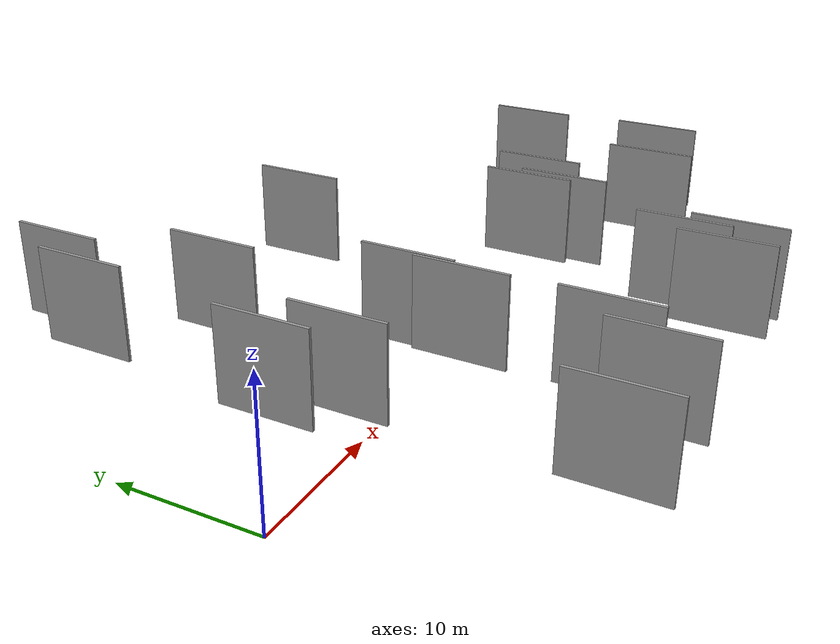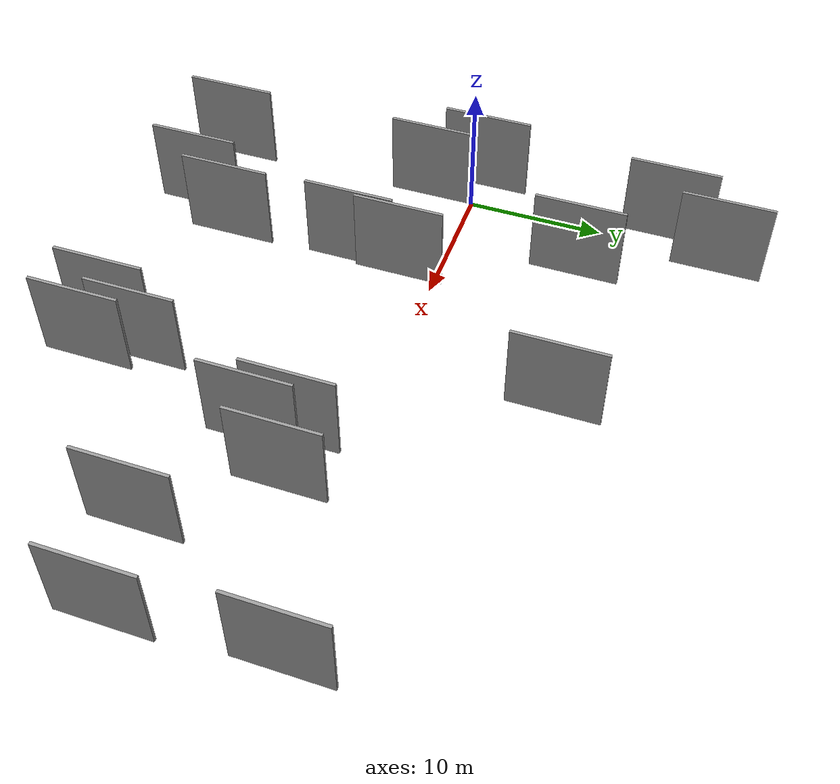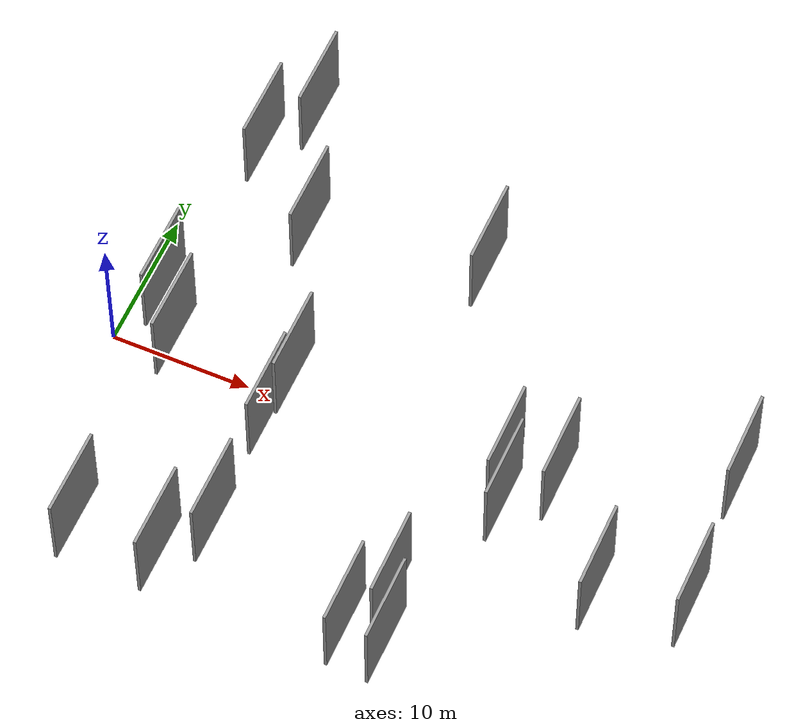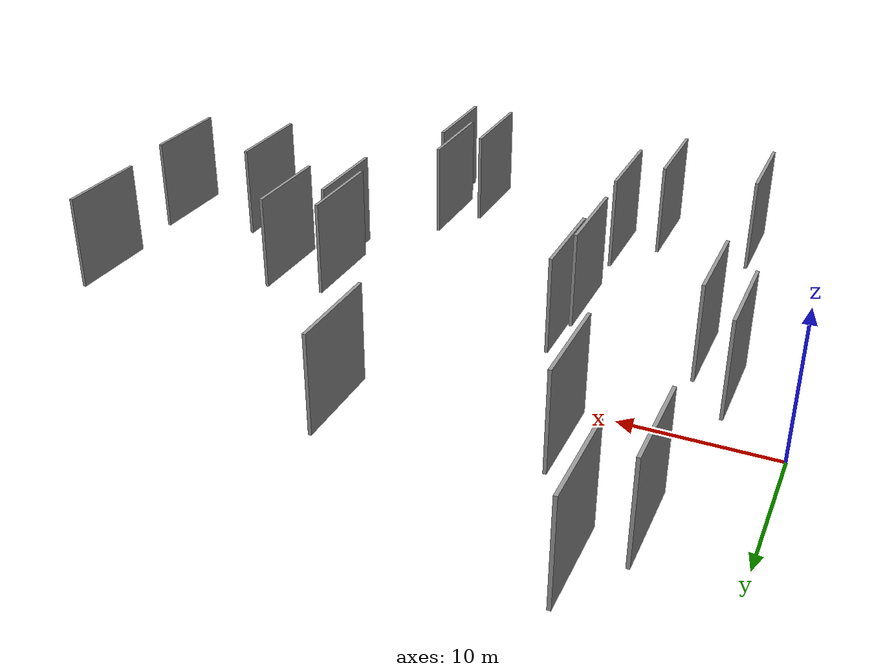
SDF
<sdf version="1.6">
 <world name="default">
  <scene>
   <sky><clouds><speed>12</speed></clouds></sky>
   <ambient>0.4 0.4 0.4 1</ambient>
   <background>0.7 0.7 0.7 1</background>
   <shadows>1</shadows>
  </scene>
  <gravity>0 0 -9.8066</gravity>
  <magnetic_field>6e-06 2.3e-05 -4.2e-05</magnetic_field>
  <physics default="0" name="default_physics" type="ode">
   <ode>
    <solver>
     <type>quick</type>
     <iters>10</iters>
     <sor>1.0</sor>
     <use_dynamic_moi_rescaling>0</use_dynamic_moi_rescaling>
    </solver>
    <constraints>
     <cfm>0</cfm>
     <erp>0.2</erp>
     <contact_max_correcting_vel>100</contact_max_correcting_vel>
     <contact_surface_layer>0.001</contact_surface_layer>
    </constraints>
   </ode>
   <max_step_size>0.004</max_step_size>
   <real_time_factor>1</real_time_factor>
   <real_time_update_rate>250</real_time_update_rate>
  </physics>
  <light name="sun" type="directional">
   <pose>0 0 10 0 0 0</pose>
   <diffuse>0.8 0.8 0.8 1</diffuse>
   <specular>0.2 0.2 0.2 1</specular>
   <attenuation>
    <range>1000</range>
    <constant>0.9</constant>
    <linear>0.01</linear>
    <quadratic>0.001</quadratic>
   </attenuation>
   <direction>-0.5 0.1 -0.9</direction>
  </light>
  <model name="grey_wall_1">
   <static>1</static>
   <pose>43.9721 -6.5906 5.0 0.000000 0.000000 1.570796</pose>
   <link name="link">
    <pose>0 0 3.00 0 0 0</pose>
    <collision name="collision"><geometry><box><size>6.00 0.2 6.00</size></box></geometry></collision>
    <visual name="visual">
     <cast_shadows>0</cast_shadows>
     <geometry><box><size>6.00 0.2 6.00</size></box></geometry>
     <material>
      <script>
       <uri>model://grey_wall/materials/scripts</uri>
       <uri>model://grey_wall/materials/textures</uri>
       <name>vrc/grey_wall</name>
      </script>
     </material>
    </visual>
   </link>
  </model>
  <model name="grey_wall_2">
   <static>1</static>
   <pose>32.8244 -1.4080 5.0 0.000000 0.000000 1.570796</pose>
   <link name="link">
    <pose>0 0 3.00 0 0 0</pose>
    <collision name="collision"><geometry><box><size>6.00 0.2 6.00</size></box></geometry></collision>
    <visual name="visual">
     <cast_shadows>0</cast_shadows>
     <geometry><box><size>6.00 0.2 6.00</size></box></geometry>
     <material>
      <script>
       <uri>model://grey_wall/materials/scripts</uri>
       <uri>model://grey_wall/materials/textures</uri>
       <name>vrc/grey_wall</name>
      </script>
     </material>
    </visual>
   </link>
  </model>
  <model name="grey_wall_3">
   <static>1</static>
   <pose>13.8967 -0.9149 5.0 0.000000 0.000000 1.570796</pose>
   <link name="link">
    <pose>0 0 3.00 0 0 0</pose>
    <collision name="collision"><geometry><box><size>6.00 0.2 6.00</size></box></geometry></collision>
    <visual name="visual">
     <cast_shadows>0</cast_shadows>
     <geometry><box><size>6.00 0.2 6.00</size></box></geometry>
     <material>
      <script>
       <uri>model://grey_wall/materials/scripts</uri>
       <uri>model://grey_wall/materials/textures</uri>
       <name>vrc/grey_wall</name>
      </script>
     </material>
    </visual>
   </link>
  </model>
  <model name="grey_wall_4">
   <static>1</static>
   <pose>29.3101 -2.0494 5.0 0.000000 0.000000 1.570796</pose>
   <link name="link">
    <pose>0 0 3.00 0 0 0</pose>
    <collision name="collision"><geometry><box><size>6.00 0.2 6.00</size></box></geometry></collision>
    <visual name="visual">
     <cast_shadows>0</cast_shadows>
     <geometry><box><size>6.00 0.2 6.00</size></box></geometry>
     <material>
      <script>
       <uri>model://grey_wall/materials/scripts</uri>
       <uri>model://grey_wall/materials/textures</uri>
       <name>vrc/grey_wall</name>
      </script>
     </material>
    </visual>
   </link>
  </model>
  <model name="grey_wall_5">
   <static>1</static>
   <pose>6.7031 18.9145 5.0 0.000000 0.000000 1.570796</pose>
   <link name="link">
    <pose>0 0 3.00 0 0 0</pose>
    <collision name="collision"><geometry><box><size>6.00 0.2 6.00</size></box></geometry></collision>
    <visual name="visual">
     <cast_shadows>0</cast_shadows>
     <geometry><box><size>6.00 0.2 6.00</size></box></geometry>
     <material>
      <script>
       <uri>model://grey_wall/materials/scripts</uri>
       <uri>model://grey_wall/materials/textures</uri>
       <name>vrc/grey_wall</name>
      </script>
     </material>
    </visual>
   </link>
  </model>
  <model name="grey_wall_6">
   <static>1</static>
   <pose>11.5426 -16.4120 5.0 0.000000 0.000000 1.570796</pose>
   <link name="link">
    <pose>0 0 3.00 0 0 0</pose>
    <collision name="collision"><geometry><box><size>6.00 0.2 6.00</size></box></geometry></collision>
    <visual name="visual">
     <cast_shadows>0</cast_shadows>
     <geometry><box><size>6.00 0.2 6.00</size></box></geometry>
     <material>
      <script>
       <uri>model://grey_wall/materials/scripts</uri>
       <uri>model://grey_wall/materials/textures</uri>
       <name>vrc/grey_wall</name>
      </script>
     </material>
    </visual>
   </link>
  </model>
  <model name="grey_wall_7">
   <static>1</static>
   <pose>26.3503 -13.5044 5.0 0.000000 0.000000 1.570796</pose>
   <link name="link">
    <pose>0 0 3.00 0 0 0</pose>
    <collision name="collision"><geometry><box><size>6.00 0.2 6.00</size></box></geometry></collision>
    <visual name="visual">
     <cast_shadows>0</cast_shadows>
     <geometry><box><size>6.00 0.2 6.00</size></box></geometry>
     <material>
      <script>
       <uri>model://grey_wall/materials/scripts</uri>
       <uri>model://grey_wall/materials/textures</uri>
       <name>vrc/grey_wall</name>
      </script>
     </material>
    </visual>
   </link>
  </model>
  <model name="grey_wall_8">
   <static>1</static>
   <pose>3.2053 1.8374 5.0 0.000000 0.000000 1.570796</pose>
   <link name="link">
    <pose>0 0 3.00 0 0 0</pose>
    <collision name="collision"><geometry><box><size>6.00 0.2 6.00</size></box></geometry></collision>
    <visual name="visual">
     <cast_shadows>0</cast_shadows>
     <geometry><box><size>6.00 0.2 6.00</size></box></geometry>
     <material>
      <script>
       <uri>model://grey_wall/materials/scripts</uri>
       <uri>model://grey_wall/materials/textures</uri>
       <name>vrc/grey_wall</name>
      </script>
     </material>
    </visual>
   </link>
  </model>
  <model name="grey_wall_9">
   <static>1</static>
   <pose>30.1183 -4.2756 5.0 0.000000 0.000000 1.570796</pose>
   <link name="link">
    <pose>0 0 3.00 0 0 0</pose>
    <collision name="collision"><geometry><box><size>6.00 0.2 6.00</size></box></geometry></collision>
    <visual name="visual">
     <cast_shadows>0</cast_shadows>
     <geometry><box><size>6.00 0.2 6.00</size></box></geometry>
     <material>
      <script>
       <uri>model://grey_wall/materials/scripts</uri>
       <uri>model://grey_wall/materials/textures</uri>
       <name>vrc/grey_wall</name>
      </script>
     </material>
    </visual>
   </link>
  </model>
  <model name="grey_wall_10">
   <static>1</static>
   <pose>27.4018 -16.6698 5.0 0.000000 0.000000 1.570796</pose>
   <link name="link">
    <pose>0 0 3.00 0 0 0</pose>
    <collision name="collision"><geometry><box><size>6.00 0.2 6.00</size></box></geometry></collision>
    <visual name="visual">
     <cast_shadows>0</cast_shadows>
     <geometry><box><size>6.00 0.2 6.00</size></box></geometry>
     <material>
      <script>
       <uri>model://grey_wall/materials/scripts</uri>
       <uri>model://grey_wall/materials/textures</uri>
       <name>vrc/grey_wall</name>
      </script>
     </material>
    </visual>
   </link>
  </model>
  <model name="grey_wall_11">
   <static>1</static>
   <pose>24.5395 -16.5570 5.0 0.000000 0.000000 1.570796</pose>
   <link name="link">
    <pose>0 0 3.00 0 0 0</pose>
    <collision name="collision"><geometry><box><size>6.00 0.2 6.00</size></box></geometry></collision>
    <visual name="visual">
     <cast_shadows>0</cast_shadows>
     <geometry><box><size>6.00 0.2 6.00</size></box></geometry>
     <material>
      <script>
       <uri>model://grey_wall/materials/scripts</uri>
       <uri>model://grey_wall/materials/textures</uri>
       <name>vrc/grey_wall</name>
      </script>
     </material>
    </visual>
   </link>
  </model>
  <model name="grey_wall_12">
   <static>1</static>
   <pose>13.8357 -13.0789 5.0 0.000000 0.000000 1.570796</pose>
   <link name="link">
    <pose>0 0 3.00 0 0 0</pose>
    <collision name="collision"><geometry><box><size>6.00 0.2 6.00</size></box></geometry></collision>
    <visual name="visual">
     <cast_shadows>0</cast_shadows>
     <geometry><box><size>6.00 0.2 6.00</size></box></geometry>
     <material>
      <script>
       <uri>model://grey_wall/materials/scripts</uri>
       <uri>model://grey_wall/materials/textures</uri>
       <name>vrc/grey_wall</name>
      </script>
     </material>
    </visual>
   </link>
  </model>
  <model name="grey_wall_13">
   <static>1</static>
   <pose>4.4060 15.0596 5.0 0.000000 0.000000 1.570796</pose>
   <link name="link">
    <pose>0 0 3.00 0 0 0</pose>
    <collision name="collision"><geometry><box><size>6.00 0.2 6.00</size></box></geometry></collision>
    <visual name="visual">
     <cast_shadows>0</cast_shadows>
     <geometry><box><size>6.00 0.2 6.00</size></box></geometry>
     <material>
      <script>
       <uri>model://grey_wall/materials/scripts</uri>
       <uri>model://grey_wall/materials/textures</uri>
       <name>vrc/grey_wall</name>
      </script>
     </material>
    </visual>
   </link>
  </model>
  <model name="grey_wall_14">
   <static>1</static>
   <pose>5.4832 -1.2964 5.0 0.000000 0.000000 1.570796</pose>
   <link name="link">
    <pose>0 0 3.00 0 0 0</pose>
    <collision name="collision"><geometry><box><size>6.00 0.2 6.00</size></box></geometry></collision>
    <visual name="visual">
     <cast_shadows>0</cast_shadows>
     <geometry><box><size>6.00 0.2 6.00</size></box></geometry>
     <material>
      <script>
       <uri>model://grey_wall/materials/scripts</uri>
       <uri>model://grey_wall/materials/textures</uri>
       <name>vrc/grey_wall</name>
      </script>
     </material>
    </visual>
   </link>
  </model>
  <model name="grey_wall_15">
   <static>1</static>
   <pose>22.1901 11.8491 5.0 0.000000 0.000000 1.570796</pose>
   <link name="link">
    <pose>0 0 3.00 0 0 0</pose>
    <collision name="collision"><geometry><box><size>6.00 0.2 6.00</size></box></geometry></collision>
    <visual name="visual">
     <cast_shadows>0</cast_shadows>
     <geometry><box><size>6.00 0.2 6.00</size></box></geometry>
     <material>
      <script>
       <uri>model://grey_wall/materials/scripts</uri>
       <uri>model://grey_wall/materials/textures</uri>
       <name>vrc/grey_wall</name>
      </script>
     </material>
    </visual>
   </link>
  </model>
  <model name="grey_wall_16">
   <static>1</static>
   <pose>37.9919 -7.8806 5.0 0.000000 0.000000 1.570796</pose>
   <link name="link">
    <pose>0 0 3.00 0 0 0</pose>
    <collision name="collision"><geometry><box><size>6.00 0.2 6.00</size></box></geometry></collision>
    <visual name="visual">
     <cast_shadows>0</cast_shadows>
     <geometry><box><size>6.00 0.2 6.00</size></box></geometry>
     <material>
      <script>
       <uri>model://grey_wall/materials/scripts</uri>
       <uri>model://grey_wall/materials/textures</uri>
       <name>vrc/grey_wall</name>
      </script>
     </material>
    </visual>
   </link>
  </model>
  <model name="grey_wall_17">
   <static>1</static>
   <pose>13.6147 -4.4266 5.0 0.000000 0.000000 1.570796</pose>
   <link name="link">
    <pose>0 0 3.00 0 0 0</pose>
    <collision name="collision"><geometry><box><size>6.00 0.2 6.00</size></box></geometry></collision>
    <visual name="visual">
     <cast_shadows>0</cast_shadows>
     <geometry><box><size>6.00 0.2 6.00</size></box></geometry>
     <material>
      <script>
       <uri>model://grey_wall/materials/scripts</uri>
       <uri>model://grey_wall/materials/textures</uri>
       <name>vrc/grey_wall</name>
      </script>
     </material>
    </visual>
   </link>
  </model>
  <model name="grey_wall_18">
   <static>1</static>
   <pose>10.0651 10.0481 5.0 0.000000 0.000000 1.570796</pose>
   <link name="link">
    <pose>0 0 3.00 0 0 0</pose>
    <collision name="collision"><geometry><box><size>6.00 0.2 6.00</size></box></geometry></collision>
    <visual name="visual">
     <cast_shadows>0</cast_shadows>
     <geometry><box><size>6.00 0.2 6.00</size></box></geometry>
     <material>
      <script>
       <uri>model://grey_wall/materials/scripts</uri>
       <uri>model://grey_wall/materials/textures</uri>
       <name>vrc/grey_wall</name>
      </script>
     </material>
    </visual>
   </link>
  </model>
  <model name="grey_wall_19">
   <static>1</static>
   <pose>5.6042 -16.3465 5.0 0.000000 0.000000 1.570796</pose>
   <link name="link">
    <pose>0 0 3.00 0 0 0</pose>
    <collision name="collision"><geometry><box><size>6.00 0.2 6.00</size></box></geometry></collision>
    <visual name="visual">
     <cast_shadows>0</cast_shadows>
     <geometry><box><size>6.00 0.2 6.00</size></box></geometry>
     <material>
      <script>
       <uri>model://grey_wall/materials/scripts</uri>
       <uri>model://grey_wall/materials/textures</uri>
       <name>vrc/grey_wall</name>
      </script>
     </material>
    </visual>
   </link>
  </model>
  <model name="grey_wall_20">
   <static>1</static>
   <pose>43.4162 3.3468 5.0 0.000000 0.000000 1.570796</pose>
   <link name="link">
    <pose>0 0 3.00 0 0 0</pose>
    <collision name="collision"><geometry><box><size>6.00 0.2 6.00</size></box></geometry></collision>
    <visual name="visual">
     <cast_shadows>0</cast_shadows>
     <geometry><box><size>6.00 0.2 6.00</size></box></geometry>
     <material>
      <script>
       <uri>model://grey_wall/materials/scripts</uri>
       <uri>model://grey_wall/materials/textures</uri>
       <name>vrc/grey_wall</name>
      </script>
     </material>
    </visual>
   </link>
  </model>
 </world>
</sdf>
